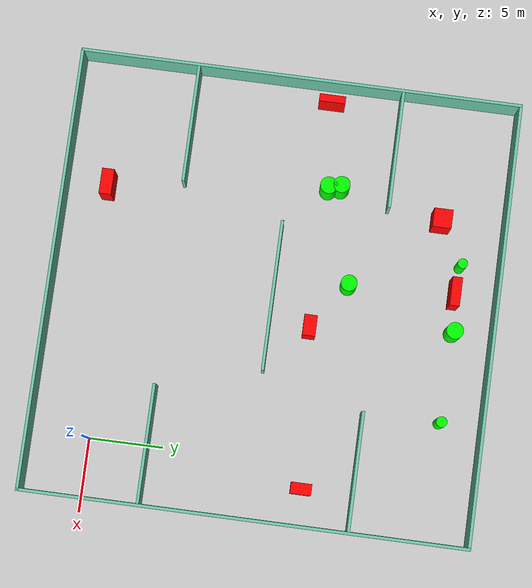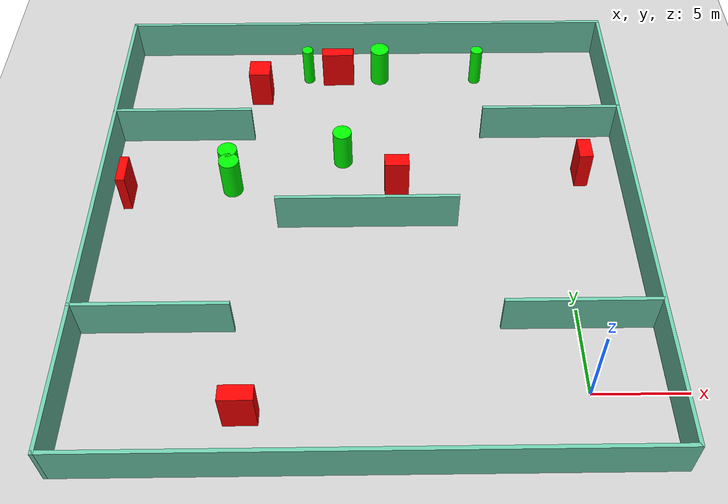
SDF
<sdf version="1.7">
 <world name="default">
  <light name="sun" type="directional">
   <pose>0 0 10 0 -0 0</pose>
   <diffuse>0.8 0.8 0.8 1</diffuse>
   <specular>0.2 0.2 0.2 1</specular>
   <attenuation>
    <range>1000</range>
    <constant>0.9</constant>
    <linear>0.01</linear>
    <quadratic>0.001</quadratic>
   </attenuation>
   <direction>-0.5 0.1 -0.9</direction>
   <spot><inner_angle>0</inner_angle><outer_angle>0</outer_angle><falloff>0</falloff></spot>
  </light>
  <model name="ground_plane">
   <static>1</static>
   <link name="link">
    <collision name="collision">
     <geometry><plane><normal>0 0 1</normal><size>100 100</size></plane></geometry>
     <surface>
      <contact><collide_bitmask>65535</collide_bitmask></contact>
      <friction><ode><mu>100</mu><mu2>50</mu2></ode></friction>
     </surface>
    </collision>
    <visual name="visual">
     <cast_shadows>0</cast_shadows>
     <geometry><plane><normal>0 0 1</normal><size>100 100</size></plane></geometry>
     <material>
      <script><uri>file://media/materials/scripts/gazebo.material</uri><name>Gazebo/Grey</name></script>
     </material>
    </visual>
   </link>
  </model>
  <gravity>0 0 -9.8</gravity>
  <magnetic_field>6e-06 2.3e-05 -4.2e-05</magnetic_field>
  <atmosphere type="adiabatic"/>
  <physics type="ode">
   <max_step_size>0.001</max_step_size>
   <real_time_factor>1</real_time_factor>
   <real_time_update_rate>1000</real_time_update_rate>
  </physics>
  <scene><ambient>0.4 0.4 0.4 1</ambient><background>0.7 0.7 0.7 1</background><shadows>1</shadows></scene>
  <spherical_coordinates>
   <surface_model>EARTH_WGS84</surface_model>
   <latitude_deg>0</latitude_deg>
   <longitude_deg>0</longitude_deg>
   <elevation>0</elevation>
   <heading_deg>0</heading_deg>
  </spherical_coordinates>
  <model name="my_base_walls">
   <link name="Wall_10">
    <collision name="Wall_10_Collision">
     <geometry><box><size>8.2 0.2 2.5</size></box></geometry>
     <pose>0 0 1.25 0 -0 0</pose>
    </collision>
    <visual name="Wall_10_Visual">
     <pose>0 0 1.25 0 -0 0</pose>
     <geometry><box><size>8.2 0.2 2.5</size></box></geometry>
     <material>
      <script><uri>file://media/materials/scripts/gazebo.material</uri><name>Gazebo/Grey</name></script>
      <ambient>0.435294 0.796078 0.67451 1</ambient>
     </material>
     <meta><layer>0</layer></meta>
    </visual>
    <pose>-11 -7 0 0 -0 0</pose>
   </link>
   <link name="Wall_12">
    <collision name="Wall_12_Collision">
     <geometry><box><size>8.2 0.2 2.5</size></box></geometry>
     <pose>0 0 1.25 0 -0 0</pose>
    </collision>
    <visual name="Wall_12_Visual">
     <pose>0 0 1.25 0 -0 0</pose>
     <geometry><box><size>8.2 0.2 2.5</size></box></geometry>
     <material>
      <script><uri>file://media/materials/scripts/gazebo.material</uri><name>Gazebo/Grey</name></script>
      <ambient>0.435294 0.796078 0.67451 1</ambient>
     </material>
     <meta><layer>0</layer></meta>
    </visual>
    <pose>-11 7 0 0 -0 0</pose>
   </link>
   <link name="Wall_14">
    <collision name="Wall_14_Collision">
     <geometry><box><size>8.2 0.2 2.5</size></box></geometry>
     <pose>0 0 1.25 0 -0 0</pose>
    </collision>
    <visual name="Wall_14_Visual">
     <pose>0 0 1.25 0 -0 0</pose>
     <geometry><box><size>8.2 0.2 2.5</size></box></geometry>
     <material>
      <script><uri>file://media/materials/scripts/gazebo.material</uri><name>Gazebo/Grey</name></script>
      <ambient>0.435294 0.796078 0.67451 1</ambient>
     </material>
     <meta><layer>0</layer></meta>
    </visual>
    <pose>11 7 0 0 -0 3.14159</pose>
   </link>
   <link name="Wall_16">
    <collision name="Wall_16_Collision">
     <geometry><box><size>10.2 0.2 2.5</size></box></geometry>
     <pose>0 0 1.25 0 -0 0</pose>
    </collision>
    <visual name="Wall_16_Visual">
     <pose>0 0 1.25 0 -0 0</pose>
     <geometry><box><size>10.2 0.2 2.5</size></box></geometry>
     <material>
      <script><uri>file://media/materials/scripts/gazebo.material</uri><name>Gazebo/Grey</name></script>
      <ambient>0.435294 0.796078 0.67451 1</ambient>
     </material>
     <meta><layer>0</layer></meta>
    </visual>
    <pose>0 0 0 0 -0 3.14159</pose>
   </link>
   <link name="Wall_2">
    <collision name="Wall_2_Collision">
     <geometry><box><size>30.2 0.2 2.5</size></box></geometry>
     <pose>0 0 1.25 0 -0 0</pose>
    </collision>
    <visual name="Wall_2_Visual">
     <pose>0 0 1.25 0 -0 0</pose>
     <geometry><box><size>30.2 0.2 2.5</size></box></geometry>
     <material>
      <script><uri>file://media/materials/scripts/gazebo.material</uri><name>Gazebo/Grey</name></script>
      <ambient>0.435294 0.796078 0.67451 1</ambient>
     </material>
     <meta><layer>0</layer></meta>
    </visual>
    <pose>0 -15 0 0 -0 3.14159</pose>
   </link>
   <link name="Wall_3">
    <collision name="Wall_3_Collision">
     <geometry><box><size>30.2 0.2 2.5</size></box></geometry>
     <pose>0 0 1.25 0 -0 0</pose>
    </collision>
    <visual name="Wall_3_Visual">
     <pose>0 0 1.25 0 -0 0</pose>
     <geometry><box><size>30.2 0.2 2.5</size></box></geometry>
     <material>
      <script><uri>file://media/materials/scripts/gazebo.material</uri><name>Gazebo/Grey</name></script>
      <ambient>0.435294 0.796078 0.67451 1</ambient>
     </material>
     <meta><layer>0</layer></meta>
    </visual>
    <pose>-15 0 0 0 -0 1.5708</pose>
   </link>
   <link name="Wall_4">
    <collision name="Wall_4_Collision">
     <geometry><box><size>30.2 0.2 2.5</size></box></geometry>
     <pose>0 0 1.25 0 -0 0</pose>
    </collision>
    <visual name="Wall_4_Visual">
     <pose>0 0 1.25 0 -0 0</pose>
     <geometry><box><size>30.2 0.2 2.5</size></box></geometry>
     <material>
      <script><uri>file://media/materials/scripts/gazebo.material</uri><name>Gazebo/Grey</name></script>
      <ambient>0.435294 0.796078 0.67451 1</ambient>
     </material>
     <meta><layer>0</layer></meta>
    </visual>
    <pose>0 15 0 0 -0 0</pose>
   </link>
   <link name="Wall_6">
    <collision name="Wall_6_Collision">
     <geometry><box><size>30.2 0.2 2.5</size></box></geometry>
     <pose>0 0 1.25 0 -0 0</pose>
    </collision>
    <visual name="Wall_6_Visual">
     <pose>0 0 1.25 0 -0 0</pose>
     <geometry><box><size>30.2 0.2 2.5</size></box></geometry>
     <material>
      <script><uri>file://media/materials/scripts/gazebo.material</uri><name>Gazebo/Grey</name></script>
      <ambient>0.435294 0.796078 0.67451 1</ambient>
     </material>
     <meta><layer>0</layer></meta>
    </visual>
    <pose>15 0 0 0 -0 1.5708</pose>
   </link>
   <link name="Wall_8">
    <collision name="Wall_8_Collision">
     <geometry><box><size>8.2 0.2 2.5</size></box></geometry>
     <pose>0 0 1.25 0 -0 0</pose>
    </collision>
    <visual name="Wall_8_Visual">
     <pose>0 0 1.25 0 -0 0</pose>
     <geometry><box><size>8.2 0.2 2.5</size></box></geometry>
     <material>
      <script><uri>file://media/materials/scripts/gazebo.material</uri><name>Gazebo/Grey</name></script>
      <ambient>0.435294 0.796078 0.67451 1</ambient>
     </material>
     <meta><layer>0</layer></meta>
    </visual>
    <pose>11 -7 0 0 -0 3.14159</pose>
   </link>
   <static>1</static>
   <pose>-11 11 0 0 -0 0</pose>
  </model>
  <model name="cylinder1">
   <static>1</static>
   <link name="link">
    <inertial>
     <mass>1</mass>
     <inertia><ixx>0.5</ixx><ixy>0</ixy><ixz>0</ixz><iyy>0.5</iyy><iyz>0</iyz><izz>1</izz></inertia>
    </inertial>
    <collision name="collision">
     <geometry><cylinder><radius>0.571004702920652</radius><length>2.5</length></cylinder></geometry>
    </collision>
    <visual name="visual">
     <geometry><cylinder><radius>0.571004702920652</radius><length>2.5</length></cylinder></geometry>
     <material>
      <ambient>0 1 0 1</ambient>
      <diffuse>0 1 0 1</diffuse>
      <specular>0.1 0.1 0.1 1</specular>
      <emissive>0 0 0 0</emissive>
     </material>
    </visual>
   </link>
   <pose>-10.204663671571662 23.380223502530352 1.25 0 0 0</pose>
  </model>
  <model name="cylinder2">
   <static>1</static>
   <link name="link">
    <inertial>
     <mass>1</mass>
     <inertia><ixx>0.5</ixx><ixy>0</ixy><ixz>0</ixz><iyy>0.5</iyy><iyz>0</iyz><izz>1</izz></inertia>
    </inertial>
    <collision name="collision">
     <geometry><cylinder><radius>0.36653206449740583</radius><length>2.5</length></cylinder></geometry>
    </collision>
    <visual name="visual">
     <geometry><cylinder><radius>0.36653206449740583</radius><length>2.5</length></cylinder></geometry>
     <material>
      <ambient>0 1 0 1</ambient>
      <diffuse>0 1 0 1</diffuse>
      <specular>0.1 0.1 0.1 1</specular>
      <emissive>0 0 0 0</emissive>
     </material>
    </visual>
   </link>
   <pose>-4.059411431626916 23.216371048826172 1.25 0 0 0</pose>
  </model>
  <model name="cylinder3">
   <static>1</static>
   <link name="link">
    <inertial>
     <mass>1</mass>
     <inertia><ixx>0.5</ixx><ixy>0</ixy><ixz>0</ixz><iyy>0.5</iyy><iyz>0</iyz><izz>1</izz></inertia>
    </inertial>
    <collision name="collision">
     <geometry><cylinder><radius>0.5793219423145066</radius><length>2.5</length></cylinder></geometry>
    </collision>
    <visual name="visual">
     <geometry><cylinder><radius>0.5793219423145066</radius><length>2.5</length></cylinder></geometry>
     <material>
      <ambient>0 1 0 1</ambient>
      <diffuse>0 1 0 1</diffuse>
      <specular>0.1 0.1 0.1 1</specular>
      <emissive>0 0 0 0</emissive>
     </material>
    </visual>
   </link>
   <pose>-18.879791348236903 13.78796894807152 1.25 0 0 0</pose>
  </model>
  <model name="cylinder4">
   <static>1</static>
   <link name="link">
    <inertial>
     <mass>1</mass>
     <inertia><ixx>0.5</ixx><ixy>0</ixy><ixz>0</ixz><iyy>0.5</iyy><iyz>0</iyz><izz>1</izz></inertia>
    </inertial>
    <collision name="collision">
     <geometry><cylinder><radius>0.5612011698426445</radius><length>2.5</length></cylinder></geometry>
    </collision>
    <visual name="visual">
     <geometry><cylinder><radius>0.5612011698426445</radius><length>2.5</length></cylinder></geometry>
     <material>
      <ambient>0 1 0 1</ambient>
      <diffuse>0 1 0 1</diffuse>
      <specular>0.1 0.1 0.1 1</specular>
      <emissive>0 0 0 0</emissive>
     </material>
    </visual>
   </link>
   <pose>-19.037805397630105 14.652816538739195 1.25 0 0 0</pose>
  </model>
  <model name="cylinder5">
   <static>1</static>
   <link name="link">
    <inertial>
     <mass>1</mass>
     <inertia><ixx>0.5</ixx><ixy>0</ixy><ixz>0</ixz><iyy>0.5</iyy><iyz>0</iyz><izz>1</izz></inertia>
    </inertial>
    <collision name="collision">
     <geometry><cylinder><radius>0.33904823951714724</radius><length>2.5</length></cylinder></geometry>
    </collision>
    <visual name="visual">
     <geometry><cylinder><radius>0.33904823951714724</radius><length>2.5</length></cylinder></geometry>
     <material>
      <ambient>0 1 0 1</ambient>
      <diffuse>0 1 0 1</diffuse>
      <specular>0.1 0.1 0.1 1</specular>
      <emissive>0 0 0 0</emissive>
     </material>
    </visual>
   </link>
   <pose>-14.760868058424856 23.35054882006299 1.25 0 0 0</pose>
  </model>
  <model name="cylinder6">
   <static>1</static>
   <link name="link">
    <inertial>
     <mass>1</mass>
     <inertia><ixx>0.5</ixx><ixy>0</ixy><ixz>0</ixz><iyy>0.5</iyy><iyz>0</iyz><izz>1</izz></inertia>
    </inertial>
    <collision name="collision">
     <geometry><cylinder><radius>0.5516345439349002</radius><length>2.5</length></cylinder></geometry>
    </collision>
    <visual name="visual">
     <geometry><cylinder><radius>0.5516345439349002</radius><length>2.5</length></cylinder></geometry>
     <material>
      <ambient>0 1 0 1</ambient>
      <diffuse>0 1 0 1</diffuse>
      <specular>0.1 0.1 0.1 1</specular>
      <emissive>0 0 0 0</emissive>
     </material>
    </visual>
   </link>
   <pose>-12.465739968197274 15.977303372572354 1.25 0 0 0</pose>
  </model>
  <model name="box1">
   <static>1</static>
   <link name="link">
    <inertial>
     <mass>1</mass>
     <inertia><ixx>0.083</ixx><ixy>0</ixy><ixz>0</ixz><iyy>0.083</iyy><iyz>0</iyz><izz>0.083</izz></inertia>
    </inertial>
    <collision name="collision">
     <geometry><box><size>1.27877370845578 1.2752228718107794 2.5</size></box></geometry>
    </collision>
    <visual name="visual">
     <geometry><box><size>1.27877370845578 1.2752228718107794 2.5</size></box></geometry>
     <material>
      <ambient>1 0 0 1</ambient>
      <diffuse>1 0 0 1</diffuse>
      <specular>0.1 0.1 0.1 1</specular>
      <emissive>0 0 0 0</emissive>
     </material>
    </visual>
    <sensor name="my_contact" type="contact">
     <contact><collision>box_collision</collision><topic>__default_topic__</topic></contact>
    </sensor>
   </link>
   <pose>-17.65170402710058 21.67328666219261 1.25 0 0 0</pose>
  </model>
  <model name="box2">
   <static>1</static>
   <link name="link">
    <inertial>
     <mass>1</mass>
     <inertia><ixx>0.083</ixx><ixy>0</ixy><ixz>0</ixz><iyy>0.083</iyy><iyz>0</iyz><izz>0.083</izz></inertia>
    </inertial>
    <collision name="collision">
     <geometry><box><size>1.9520252782337344 0.6673485099667315 2.5</size></box></geometry>
    </collision>
    <visual name="visual">
     <geometry><box><size>1.9520252782337344 0.6673485099667315 2.5</size></box></geometry>
     <material>
      <ambient>1 0 0 1</ambient>
      <diffuse>1 0 0 1</diffuse>
      <specular>0.1 0.1 0.1 1</specular>
      <emissive>0 0 0 0</emissive>
     </material>
    </visual>
    <sensor name="my_contact" type="contact">
     <contact><collision>box_collision</collision><topic>__default_topic__</topic></contact>
    </sensor>
   </link>
   <pose>-12.846265104054122 23.143483728435953 1.25 0 0 0</pose>
  </model>
  <model name="box3">
   <static>1</static>
   <link name="link">
    <inertial>
     <mass>1</mass>
     <inertia><ixx>0.083</ixx><ixy>0</ixy><ixz>0</ixz><iyy>0.083</iyy><iyz>0</iyz><izz>0.083</izz></inertia>
    </inertial>
    <collision name="collision">
     <geometry><box><size>1.7348518010931082 0.8324765987031943 2.5</size></box></geometry>
    </collision>
    <visual name="visual">
     <geometry><box><size>1.7348518010931082 0.8324765987031943 2.5</size></box></geometry>
     <material>
      <ambient>1 0 0 1</ambient>
      <diffuse>1 0 0 1</diffuse>
      <specular>0.1 0.1 0.1 1</specular>
      <emissive>0 0 0 0</emissive>
     </material>
    </visual>
    <sensor name="my_contact" type="contact">
     <contact><collision>box_collision</collision><topic>__default_topic__</topic></contact>
    </sensor>
   </link>
   <pose>-17.182191140878423 -1.0919828621792869 1.25 0 0 0</pose>
  </model>
  <model name="box4">
   <static>1</static>
   <link name="link">
    <inertial>
     <mass>1</mass>
     <inertia><ixx>0.083</ixx><ixy>0</ixy><ixz>0</ixz><iyy>0.083</iyy><iyz>0</iyz><izz>0.083</izz></inertia>
    </inertial>
    <collision name="collision">
     <geometry><box><size>0.7746663208537032 1.3974212328013584 2.5</size></box></geometry>
    </collision>
    <visual name="visual">
     <geometry><box><size>0.7746663208537032 1.3974212328013584 2.5</size></box></geometry>
     <material>
      <ambient>1 0 0 1</ambient>
      <diffuse>1 0 0 1</diffuse>
      <specular>0.1 0.1 0.1 1</specular>
      <emissive>0 0 0 0</emissive>
     </material>
    </visual>
    <sensor name="my_contact" type="contact">
     <contact><collision>box_collision</collision><topic>__default_topic__</topic></contact>
    </sensor>
   </link>
   <pose>1.5192559385713942 14.551820748760719 1.25 0 0 0</pose>
  </model>
  <model name="box5">
   <static>1</static>
   <link name="link">
    <inertial>
     <mass>1</mass>
     <inertia><ixx>0.083</ixx><ixy>0</ixy><ixz>0</ixz><iyy>0.083</iyy><iyz>0</iyz><izz>0.083</izz></inertia>
    </inertial>
    <collision name="collision">
     <geometry><box><size>1.403070624135282 0.8744000125627223 2.5</size></box></geometry>
    </collision>
    <visual name="visual">
     <geometry><box><size>1.403070624135282 0.8744000125627223 2.5</size></box></geometry>
     <material>
      <ambient>1 0 0 1</ambient>
      <diffuse>1 0 0 1</diffuse>
      <specular>0.1 0.1 0.1 1</specular>
      <emissive>0 0 0 0</emissive>
     </material>
    </visual>
    <sensor name="my_contact" type="contact">
     <contact><collision>box_collision</collision><topic>__default_topic__</topic></contact>
    </sensor>
   </link>
   <pose>-9.308888475830237 13.742212067942653 1.25 0 0 0</pose>
  </model>
  <model name="box6">
   <static>1</static>
   <link name="link">
    <inertial>
     <mass>1</mass>
     <inertia><ixx>0.083</ixx><ixy>0</ixy><ixz>0</ixz><iyy>0.083</iyy><iyz>0</iyz><izz>0.083</izz></inertia>
    </inertial>
    <collision name="collision">
     <geometry><box><size>0.5046267681870669 1.787072201599905 2.5</size></box></geometry>
    </collision>
    <visual name="visual">
     <geometry><box><size>0.5046267681870669 1.787072201599905 2.5</size></box></geometry>
     <material>
      <ambient>1 0 0 1</ambient>
      <diffuse>1 0 0 1</diffuse>
      <specular>0.1 0.1 0.1 1</specular>
      <emissive>0 0 0 0</emissive>
     </material>
    </visual>
    <sensor name="my_contact" type="contact">
     <contact><collision>box_collision</collision><topic>__default_topic__</topic></contact>
    </sensor>
   </link>
   <pose>-24.818556274969673 13.279999920770187 1.25 0 0 0</pose>
  </model>
 </world>
</sdf>
